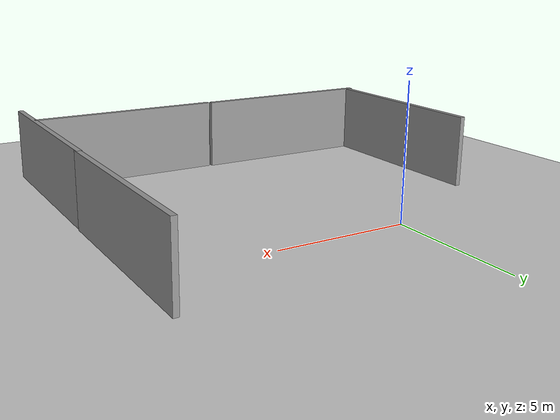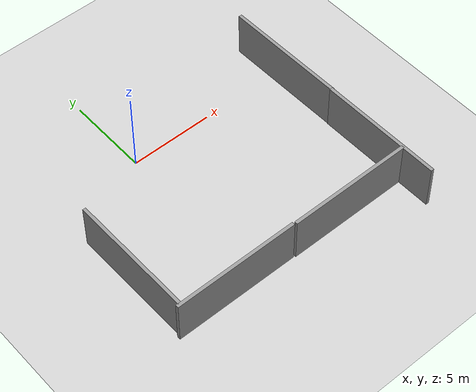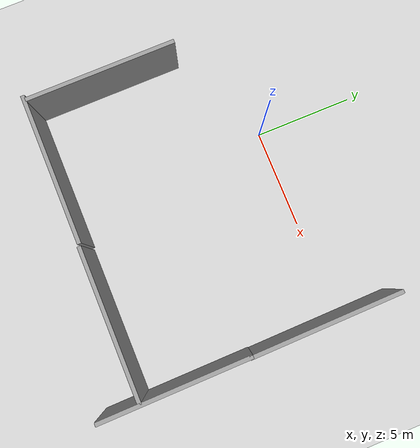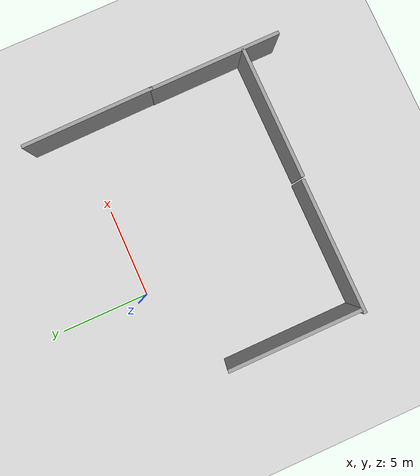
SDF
<sdf version="1.9">
 <world name="empty">
  <model name="ground_plane">
   <static>true</static>
   <link name="link">
    <collision name="collision">
     <geometry><plane><normal>0 0 1</normal><size>100 100</size></plane></geometry>
    </collision>
    <visual name="visual">
     <geometry><plane><normal>0 0 1</normal><size>100 100</size></plane></geometry>
     <material>
      <ambient>0.8 0.8 0.8 1</ambient>
      <diffuse>0.8 0.8 0.8 1</diffuse>
      <specular>0.8 0.8 0.8 1</specular>
     </material>
    </visual>
    <inertial>
     <mass>1</mass>
     <inertia><ixx>1</ixx><ixy>0</ixy><ixz>0</ixz><iyy>1</iyy><iyz>0</iyz><izz>1</izz></inertia>
    </inertial>
   </link>
  </model>
  <model name="grey_wall">
   <static>true</static>
   <link name="link">
    <pose>0 0 1.4 0 -0 0</pose>
    <collision name="collision"><geometry><box><size>7.5 0.2 2.8</size></box></geometry></collision>
    <visual name="visual">
     <cast_shadows>false</cast_shadows>
     <geometry><box><size>7.5 0.2 2.8</size></box></geometry>
     <material>
      <script>
       <uri>https://fuel.gazebosim.org/1.0/openrobotics/models/grey wall/3/files/materials/scripts</uri>
       <uri>https://fuel.gazebosim.org/1.0/openrobotics/models/grey wall/3/files/materials/textures</uri>
       <name>vrc/grey_wall</name>
      </script>
     </material>
    </visual>
    <inertial>
     <mass>1</mass>
     <inertia><ixx>1</ixx><ixy>0</ixy><ixz>0</ixz><iyy>1</iyy><iyz>0</iyz><izz>1</izz></inertia>
    </inertial>
   </link>
   <pose>6.07254 -10.0933 0 0 -0 0</pose>
  </model>
  <model name="grey_wall_1">
   <static>true</static>
   <link name="link">
    <pose>0 0 1.4 0 -0 0</pose>
    <collision name="collision"><geometry><box><size>7.5 0.2 2.8</size></box></geometry></collision>
    <visual name="visual">
     <cast_shadows>false</cast_shadows>
     <geometry><box><size>7.5 0.2 2.8</size></box></geometry>
     <material>
      <script>
       <uri>https://fuel.gazebosim.org/1.0/openrobotics/models/grey wall/3/files/materials/scripts</uri>
       <uri>https://fuel.gazebosim.org/1.0/openrobotics/models/grey wall/3/files/materials/textures</uri>
       <name>vrc/grey_wall</name>
      </script>
     </material>
    </visual>
    <inertial>
     <mass>1</mass>
     <inertia><ixx>1</ixx><ixy>0</ixy><ixz>0</ixz><iyy>1</iyy><iyz>0</iyz><izz>1</izz></inertia>
    </inertial>
   </link>
   <pose>-1.52185 -10.0327 0 0 -0 0</pose>
  </model>
  <model name="grey_wall_3">
   <static>true</static>
   <link name="link">
    <pose>0 0 1.4 0 -0 0</pose>
    <collision name="collision"><geometry><box><size>7.5 0.2 2.8</size></box></geometry></collision>
    <visual name="visual">
     <cast_shadows>false</cast_shadows>
     <geometry><box><size>7.5 0.2 2.8</size></box></geometry>
     <material>
      <script>
       <uri>https://fuel.gazebosim.org/1.0/openrobotics/models/grey wall/3/files/materials/scripts</uri>
       <uri>https://fuel.gazebosim.org/1.0/openrobotics/models/grey wall/3/files/materials/textures</uri>
       <name>vrc/grey_wall</name>
      </script>
     </material>
    </visual>
    <inertial>
     <mass>1</mass>
     <inertia><ixx>1</ixx><ixy>0</ixy><ixz>0</ixz><iyy>1</iyy><iyz>0</iyz><izz>1</izz></inertia>
    </inertial>
   </link>
   <pose>9.77318 -1.11634 0 0 -0 1.58364</pose>
  </model>
  <model name="grey_wall_5">
   <static>true</static>
   <link name="link">
    <pose>0 0 1.4 0 -0 0</pose>
    <collision name="collision"><geometry><box><size>7.5 0.2 2.8</size></box></geometry></collision>
    <visual name="visual">
     <cast_shadows>false</cast_shadows>
     <geometry><box><size>7.5 0.2 2.8</size></box></geometry>
     <material>
      <script>
       <uri>https://fuel.gazebosim.org/1.0/openrobotics/models/grey wall/3/files/materials/scripts</uri>
       <uri>https://fuel.gazebosim.org/1.0/openrobotics/models/grey wall/3/files/materials/textures</uri>
       <name>vrc/grey_wall</name>
      </script>
     </material>
    </visual>
    <inertial>
     <mass>1</mass>
     <inertia><ixx>1</ixx><ixy>0</ixy><ixz>0</ixz><iyy>1</iyy><iyz>0</iyz><izz>1</izz></inertia>
    </inertial>
   </link>
   <pose>9.82535 -8.45171 0 0 -0 1.57903</pose>
  </model>
  <model name="grey_wall_7">
   <static>true</static>
   <link name="link">
    <pose>0 0 1.4 0 -0 0</pose>
    <collision name="collision"><geometry><box><size>7.5 0.2 2.8</size></box></geometry></collision>
    <visual name="visual">
     <cast_shadows>false</cast_shadows>
     <geometry><box><size>7.5 0.2 2.8</size></box></geometry>
     <material>
      <script>
       <uri>https://fuel.gazebosim.org/1.0/openrobotics/models/grey wall/3/files/materials/scripts</uri>
       <uri>https://fuel.gazebosim.org/1.0/openrobotics/models/grey wall/3/files/materials/textures</uri>
       <name>vrc/grey_wall</name>
      </script>
     </material>
    </visual>
    <inertial>
     <mass>1</mass>
     <inertia><ixx>1</ixx><ixy>0</ixy><ixz>0</ixz><iyy>1</iyy><iyz>0</iyz><izz>1</izz></inertia>
    </inertial>
   </link>
   <pose>-5.04996 -6.23083 0 0 -0 1.57462</pose>
  </model>
 </world>
</sdf>
